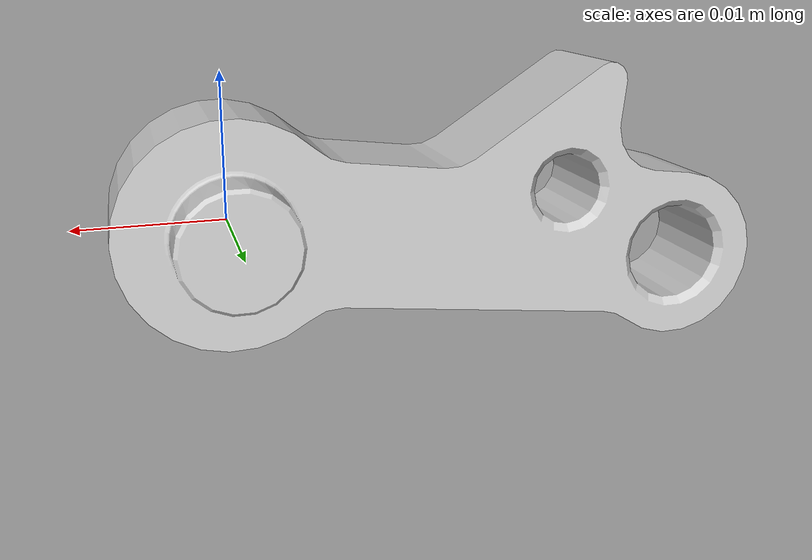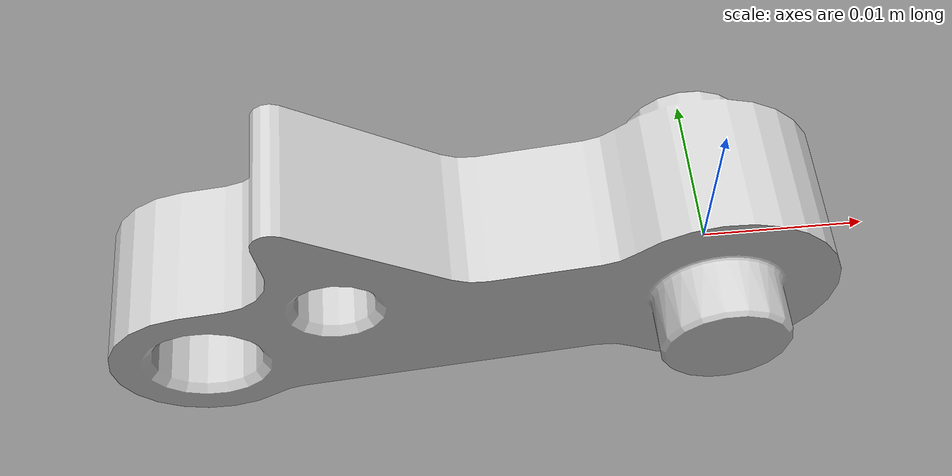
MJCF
<mujoco model="right_knuckle">
  <default>
    <default class="visual">
      <geom group="2" type="mesh" contype="0" conaffinity="0"/>
    </default>
    <default class="collision">
      <geom group="3" type="mesh"/>
    </default>
  </default>
  <asset>
    <material name="grey.002" specular="0.5" shininess="0.25" rgba="0.799103 0.799103 0.799103 1.000000"/>
    <mesh file="right_knuckle.obj"/>
  </asset>
  <worldbody>
    <body name="right_knuckle">
      <geom material="grey.002" mesh="right_knuckle" class="visual"/>
      <geom mesh="right_knuckle" class="collision"/>
    </body>
  </worldbody>
</mujoco>
